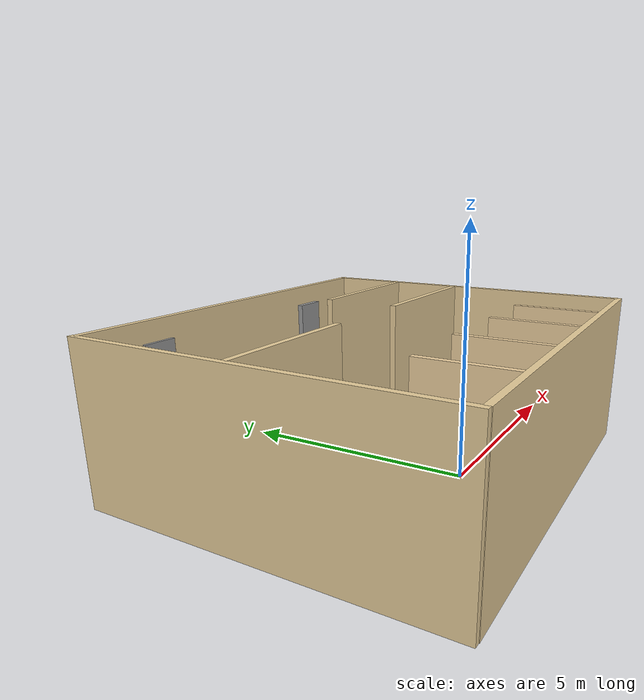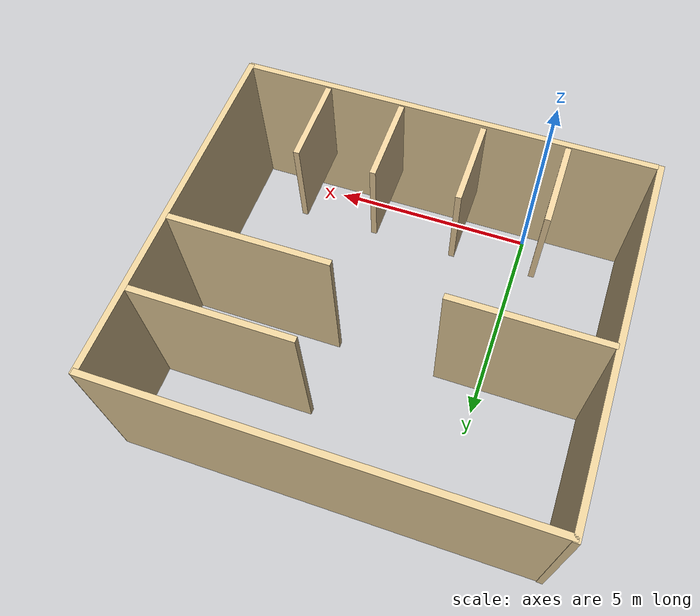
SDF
<?xml version='1.0'?>
<sdf version='1.7'>
  <model name='HospitalWalls'>
    <link name='HospitalWalls::hospital_test::hospital_test::hospital_test::hospital_test::hospital_test::Door_0'>
      <pose>-0.47628 7.70771 0 0 -0 0</pose>
      <self_collide>0</self_collide>
      <enable_wind>0</enable_wind>
      <kinematic>0</kinematic>
      <visual name='Door_0_Visual'>
        <pose>0 0 1 0 -0 0</pose>
        <geometry>
          <box>
            <size>0.9 0.17 2</size>
          </box>
        </geometry>
        <material>
          <script>
            <uri>file://media/materials/scripts/gazebo.material</uri>
            <name>Gazebo/Grey</name>
          </script>
          <shader type='pixel'/>
        </material>
        <transparency>0</transparency>
        <cast_shadows>1</cast_shadows>
      </visual>
      <collision name='Door_0_Collision'>
        <laser_retro>0</laser_retro>
        <max_contacts>10</max_contacts>
        <pose>0 0 1 0 -0 0</pose>
        <geometry>
          <box>
            <size>0.9 0.17 2</size>
          </box>
        </geometry>
        <surface>
          <friction>
            <ode>
              <mu>1</mu>
              <mu2>1</mu2>
              <fdir1>0 0 0</fdir1>
              <slip1>0</slip1>
              <slip2>0</slip2>
            </ode>
            <torsional>
              <coefficient>1</coefficient>
              <patch_radius>0</patch_radius>
              <surface_radius>0</surface_radius>
              <use_patch_radius>1</use_patch_radius>
              <ode>
                <slip>0</slip>
              </ode>
            </torsional>
          </friction>
          <bounce>
            <restitution_coefficient>0</restitution_coefficient>
            <threshold>1e+06</threshold>
          </bounce>
          <contact>
            <collide_without_contact>0</collide_without_contact>
            <collide_without_contact_bitmask>1</collide_without_contact_bitmask>
            <collide_bitmask>1</collide_bitmask>
            <ode>
              <soft_cfm>0</soft_cfm>
              <soft_erp>0.2</soft_erp>
              <kp>1e+13</kp>
              <kd>1</kd>
              <max_vel>0.01</max_vel>
              <min_depth>0</min_depth>
            </ode>
            <bullet>
              <split_impulse>1</split_impulse>
              <split_impulse_penetration_threshold>-0.01</split_impulse_penetration_threshold>
              <soft_cfm>0</soft_cfm>
              <soft_erp>0.2</soft_erp>
              <kp>1e+13</kp>
              <kd>1</kd>
            </bullet>
          </contact>
        </surface>
      </collision>
    </link>
    <link name='HospitalWalls::hospital_test::hospital_test::hospital_test::hospital_test::Wall_15_clone'>
      <pose>5.78046 -0.214578 0 0 -0 1.5708</pose>
      <self_collide>0</self_collide>
      <enable_wind>0</enable_wind>
      <kinematic>0</kinematic>
      <visual name='Wall_15_Visual'>
        <pose>0 0 1.25 0 -0 0</pose>
        <geometry>
          <box>
            <size>2.25 0.15 2.5</size>
          </box>
        </geometry>
        <material>
          <script>
            <uri>file://media/materials/scripts/gazebo.material</uri>
            <name>Gazebo/Grey</name>
          </script>
          <ambient>0.921569 0.807843 0.615686 1</ambient>
          <shader type='pixel'/>
        </material>
        <meta>
          <layer>0</layer>
        </meta>
        <transparency>0</transparency>
        <cast_shadows>1</cast_shadows>
      </visual>
      <collision name='Wall_15_Collision'>
        <laser_retro>0</laser_retro>
        <max_contacts>10</max_contacts>
        <pose>0 0 1.25 0 -0 0</pose>
        <geometry>
          <box>
            <size>2.25 0.15 2.5</size>
          </box>
        </geometry>
        <surface>
          <friction>
            <ode>
              <mu>1</mu>
              <mu2>1</mu2>
              <fdir1>0 0 0</fdir1>
              <slip1>0</slip1>
              <slip2>0</slip2>
            </ode>
            <torsional>
              <coefficient>1</coefficient>
              <patch_radius>0</patch_radius>
              <surface_radius>0</surface_radius>
              <use_patch_radius>1</use_patch_radius>
              <ode>
                <slip>0</slip>
              </ode>
            </torsional>
          </friction>
          <bounce>
            <restitution_coefficient>0</restitution_coefficient>
            <threshold>1e+06</threshold>
          </bounce>
          <contact>
            <collide_without_contact>0</collide_without_contact>
            <collide_without_contact_bitmask>1</collide_without_contact_bitmask>
            <collide_bitmask>1</collide_bitmask>
            <ode>
              <soft_cfm>0</soft_cfm>
              <soft_erp>0.2</soft_erp>
              <kp>1e+13</kp>
              <kd>1</kd>
              <max_vel>0.01</max_vel>
              <min_depth>0</min_depth>
            </ode>
            <bullet>
              <split_impulse>1</split_impulse>
              <split_impulse_penetration_threshold>-0.01</split_impulse_penetration_threshold>
              <soft_cfm>0</soft_cfm>
              <soft_erp>0.2</soft_erp>
              <kp>1e+13</kp>
              <kd>1</kd>
            </bullet>
          </contact>
        </surface>
      </collision>
    </link>
    <link name='HospitalWalls::hospital_test::hospital_test::hospital_test::hospital_test::hospital_test::Door_1'>
      <pose>5.60707 7.63831 0 0 -0 0</pose>
      <self_collide>0</self_collide>
      <enable_wind>0</enable_wind>
      <kinematic>0</kinematic>
      <visual name='Door_1_Visual'>
        <pose>0 0 1 0 -0 0</pose>
        <geometry>
          <box>
            <size>0.9 0.17 2</size>
          </box>
        </geometry>
        <material>
          <script>
            <uri>file://media/materials/scripts/gazebo.material</uri>
            <name>Gazebo/Grey</name>
          </script>
          <shader type='pixel'/>
        </material>
        <transparency>0</transparency>
        <cast_shadows>1</cast_shadows>
      </visual>
      <collision name='Door_1_Collision'>
        <laser_retro>0</laser_retro>
        <max_contacts>10</max_contacts>
        <pose>0 0 1 0 -0 0</pose>
        <geometry>
          <box>
            <size>0.9 0.17 2</size>
          </box>
        </geometry>
        <surface>
          <friction>
            <ode>
              <mu>1</mu>
              <mu2>1</mu2>
              <fdir1>0 0 0</fdir1>
              <slip1>0</slip1>
              <slip2>0</slip2>
            </ode>
            <torsional>
              <coefficient>1</coefficient>
              <patch_radius>0</patch_radius>
              <surface_radius>0</surface_radius>
              <use_patch_radius>1</use_patch_radius>
              <ode>
                <slip>0</slip>
              </ode>
            </torsional>
          </friction>
          <bounce>
            <restitution_coefficient>0</restitution_coefficient>
            <threshold>1e+06</threshold>
          </bounce>
          <contact>
            <collide_without_contact>0</collide_without_contact>
            <collide_without_contact_bitmask>1</collide_without_contact_bitmask>
            <collide_bitmask>1</collide_bitmask>
            <ode>
              <soft_cfm>0</soft_cfm>
              <soft_erp>0.2</soft_erp>
              <kp>1e+13</kp>
              <kd>1</kd>
              <max_vel>0.01</max_vel>
              <min_depth>0</min_depth>
            </ode>
            <bullet>
              <split_impulse>1</split_impulse>
              <split_impulse_penetration_threshold>-0.01</split_impulse_penetration_threshold>
              <soft_cfm>0</soft_cfm>
              <soft_erp>0.2</soft_erp>
              <kp>1e+13</kp>
              <kd>1</kd>
            </bullet>
          </contact>
        </surface>
      </collision>
    </link>
    <link name='HospitalWalls::hospital_test::hospital_test::hospital_test::hospital_test::hospital_test::Wall_10'>
      <pose>-0.455438 -0.216971 0 0 -0 1.5708</pose>
      <self_collide>0</self_collide>
      <enable_wind>0</enable_wind>
      <kinematic>0</kinematic>
      <visual name='Wall_10_Visual'>
        <pose>0 0 1.25 0 -0 0</pose>
        <geometry>
          <box>
            <size>2.25 0.15 2.5</size>
          </box>
        </geometry>
        <material>
          <script>
            <uri>file://media/materials/scripts/gazebo.material</uri>
            <name>Gazebo/Grey</name>
          </script>
          <ambient>0.921569 0.807843 0.615686 1</ambient>
          <shader type='pixel'/>
        </material>
        <meta>
          <layer>0</layer>
        </meta>
        <transparency>0</transparency>
        <cast_shadows>1</cast_shadows>
      </visual>
      <collision name='Wall_10_Collision'>
        <laser_retro>0</laser_retro>
        <max_contacts>10</max_contacts>
        <pose>0 0 1.25 0 -0 0</pose>
        <geometry>
          <box>
            <size>2.25 0.15 2.5</size>
          </box>
        </geometry>
        <surface>
          <friction>
            <ode>
              <mu>1</mu>
              <mu2>1</mu2>
              <fdir1>0 0 0</fdir1>
              <slip1>0</slip1>
              <slip2>0</slip2>
            </ode>
            <torsional>
              <coefficient>1</coefficient>
              <patch_radius>0</patch_radius>
              <surface_radius>0</surface_radius>
              <use_patch_radius>1</use_patch_radius>
              <ode>
                <slip>0</slip>
              </ode>
            </torsional>
          </friction>
          <bounce>
            <restitution_coefficient>0</restitution_coefficient>
            <threshold>1e+06</threshold>
          </bounce>
          <contact>
            <collide_without_contact>0</collide_without_contact>
            <collide_without_contact_bitmask>1</collide_without_contact_bitmask>
            <collide_bitmask>1</collide_bitmask>
            <ode>
              <soft_cfm>0</soft_cfm>
              <soft_erp>0.2</soft_erp>
              <kp>1e+13</kp>
              <kd>1</kd>
              <max_vel>0.01</max_vel>
              <min_depth>0</min_depth>
            </ode>
            <bullet>
              <split_impulse>1</split_impulse>
              <split_impulse_penetration_threshold>-0.01</split_impulse_penetration_threshold>
              <soft_cfm>0</soft_cfm>
              <soft_erp>0.2</soft_erp>
              <kp>1e+13</kp>
              <kd>1</kd>
            </bullet>
          </contact>
        </surface>
      </collision>
    </link>
    <link name='HospitalWalls::hospital_test::hospital_test::hospital_test::hospital_test::hospital_test::Wall_12'>
      <pose>1.67297 -0.170712 0 0 -0 1.5708</pose>
      <self_collide>0</self_collide>
      <enable_wind>0</enable_wind>
      <kinematic>0</kinematic>
      <visual name='Wall_12_Visual'>
        <pose>0 0 1.25 0 -0 0</pose>
        <geometry>
          <box>
            <size>2.25 0.15 2.5</size>
          </box>
        </geometry>
        <material>
          <script>
            <uri>file://media/materials/scripts/gazebo.material</uri>
            <name>Gazebo/Grey</name>
          </script>
          <ambient>0.921569 0.807843 0.615686 1</ambient>
          <shader type='pixel'/>
        </material>
        <meta>
          <layer>0</layer>
        </meta>
        <transparency>0</transparency>
        <cast_shadows>1</cast_shadows>
      </visual>
      <collision name='Wall_12_Collision'>
        <laser_retro>0</laser_retro>
        <max_contacts>10</max_contacts>
        <pose>0 0 1.25 0 -0 0</pose>
        <geometry>
          <box>
            <size>2.25 0.15 2.5</size>
          </box>
        </geometry>
        <surface>
          <friction>
            <ode>
              <mu>1</mu>
              <mu2>1</mu2>
              <fdir1>0 0 0</fdir1>
              <slip1>0</slip1>
              <slip2>0</slip2>
            </ode>
            <torsional>
              <coefficient>1</coefficient>
              <patch_radius>0</patch_radius>
              <surface_radius>0</surface_radius>
              <use_patch_radius>1</use_patch_radius>
              <ode>
                <slip>0</slip>
              </ode>
            </torsional>
          </friction>
          <bounce>
            <restitution_coefficient>0</restitution_coefficient>
            <threshold>1e+06</threshold>
          </bounce>
          <contact>
            <collide_without_contact>0</collide_without_contact>
            <collide_without_contact_bitmask>1</collide_without_contact_bitmask>
            <collide_bitmask>1</collide_bitmask>
            <ode>
              <soft_cfm>0</soft_cfm>
              <soft_erp>0.2</soft_erp>
              <kp>1e+13</kp>
              <kd>1</kd>
              <max_vel>0.01</max_vel>
              <min_depth>0</min_depth>
            </ode>
            <bullet>
              <split_impulse>1</split_impulse>
              <split_impulse_penetration_threshold>-0.01</split_impulse_penetration_threshold>
              <soft_cfm>0</soft_cfm>
              <soft_erp>0.2</soft_erp>
              <kp>1e+13</kp>
              <kd>1</kd>
            </bullet>
          </contact>
        </surface>
      </collision>
    </link>
    <link name='HospitalWalls::hospital_test::hospital_test::hospital_test::hospital_test::hospital_test::Wall_15'>
      <pose>3.82148 -0.216971 0 0 -0 1.5708</pose>
      <self_collide>0</self_collide>
      <enable_wind>0</enable_wind>
      <kinematic>0</kinematic>
      <gravity>1</gravity>
      <inertial>
        <mass>1</mass>
        <pose>0 0 0 0 -0 0</pose>
        <inertia>
          <ixx>1</ixx>
          <ixy>0</ixy>
          <ixz>0</ixz>
          <iyy>1</iyy>
          <iyz>0</iyz>
          <izz>1</izz>
        </inertia>
      </inertial>
      <visual name='Wall_15_Visual'>
        <pose>0 0 1.25 0 -0 0</pose>
        <geometry>
          <box>
            <size>2.25 0.15 2.5</size>
          </box>
        </geometry>
        <material>
          <script>
            <uri>file://media/materials/scripts/gazebo.material</uri>
            <name>Gazebo/Grey</name>
          </script>
          <ambient>0.922 0.808 0.616 1</ambient>
          <shader type='pixel'>
            <normal_map>__default__</normal_map>
          </shader>
        </material>
        <meta>
          <layer>0</layer>
        </meta>
        <transparency>0</transparency>
        <cast_shadows>1</cast_shadows>
      </visual>
      <collision name='Wall_15_Collision'>
        <laser_retro>0</laser_retro>
        <max_contacts>10</max_contacts>
        <pose>0 0 1.25 0 -0 0</pose>
        <geometry>
          <box>
            <size>2.25 0.15 2.5</size>
          </box>
        </geometry>
        <surface>
          <friction>
            <ode>
              <mu>1</mu>
              <mu2>1</mu2>
              <fdir1>0 0 0</fdir1>
              <slip1>0</slip1>
              <slip2>0</slip2>
            </ode>
            <torsional>
              <coefficient>1</coefficient>
              <patch_radius>0</patch_radius>
              <surface_radius>0</surface_radius>
              <use_patch_radius>1</use_patch_radius>
              <ode>
                <slip>0</slip>
              </ode>
            </torsional>
          </friction>
          <bounce>
            <restitution_coefficient>0</restitution_coefficient>
            <threshold>1e+06</threshold>
          </bounce>
          <contact>
            <collide_without_contact>0</collide_without_contact>
            <collide_without_contact_bitmask>1</collide_without_contact_bitmask>
            <collide_bitmask>1</collide_bitmask>
            <ode>
              <soft_cfm>0</soft_cfm>
              <soft_erp>0.2</soft_erp>
              <kp>1e+13</kp>
              <kd>1</kd>
              <max_vel>0.01</max_vel>
              <min_depth>0</min_depth>
            </ode>
            <bullet>
              <split_impulse>1</split_impulse>
              <split_impulse_penetration_threshold>-0.01</split_impulse_penetration_threshold>
              <soft_cfm>0</soft_cfm>
              <soft_erp>0.2</soft_erp>
              <kp>1e+13</kp>
              <kd>1</kd>
            </bullet>
          </contact>
        </surface>
      </collision>
    </link>
    <link name='HospitalWalls::link_0'>
      <inertial>
        <mass>6.75235</mass>
        <inertia>
          <ixx>9.38568</ixx>
          <ixy>0</ixy>
          <ixz>0</ixz>
          <iyy>72.7317</iyy>
          <iyz>0</iyz>
          <izz>63.3734</izz>
        </inertia>
        <pose>0 0 0 0 -0 0</pose>
      </inertial>
      <pose>2.68996 -1.41359 0.5 0 -0 0</pose>
      <self_collide>0</self_collide>
      <enable_wind>0</enable_wind>
      <kinematic>0</kinematic>
      <gravity>1</gravity>
      <visual name='visual'>
        <pose>0 0 0 0 -0 0</pose>
        <geometry>
          <box>
            <size>10.6113 0.156015 4.08112</size>
          </box>
        </geometry>
        <material>
          <lighting>1</lighting>
          <script>
            <uri>file://media/materials/scripts/gazebo.material</uri>
            <name>Gazebo/Grey</name>
          </script>
          <shader type='pixel'>
            <normal_map>__default__</normal_map>
          </shader>
          <ambient>0.9 0.8 0.6 1</ambient>
          <diffuse>0.7 0.7 0.7 1</diffuse>
          <specular>0.01 0.01 0.01 1</specular>
          <emissive>0 0 0 1</emissive>
        </material>
        <transparency>0</transparency>
        <cast_shadows>1</cast_shadows>
      </visual>
      <collision name='collision'>
        <laser_retro>0</laser_retro>
        <max_contacts>10</max_contacts>
        <pose>0 0 0 0 -0 0</pose>
        <geometry>
          <box>
            <size>10.6113 0.156015 4.08112</size>
          </box>
        </geometry>
        <surface>
          <friction>
            <ode>
              <mu>1</mu>
              <mu2>1</mu2>
              <fdir1>0 0 0</fdir1>
              <slip1>0</slip1>
              <slip2>0</slip2>
            </ode>
            <torsional>
              <coefficient>1</coefficient>
              <patch_radius>0</patch_radius>
              <surface_radius>0</surface_radius>
              <use_patch_radius>1</use_patch_radius>
              <ode>
                <slip>0</slip>
              </ode>
            </torsional>
          </friction>
          <bounce>
            <restitution_coefficient>0</restitution_coefficient>
            <threshold>1e+06</threshold>
          </bounce>
          <contact>
            <collide_without_contact>0</collide_without_contact>
            <collide_without_contact_bitmask>1</collide_without_contact_bitmask>
            <collide_bitmask>1</collide_bitmask>
            <ode>
              <soft_cfm>0</soft_cfm>
              <soft_erp>0.2</soft_erp>
              <kp>1e+13</kp>
              <kd>1</kd>
              <max_vel>0.01</max_vel>
              <min_depth>0</min_depth>
            </ode>
            <bullet>
              <split_impulse>1</split_impulse>
              <split_impulse_penetration_threshold>-0.01</split_impulse_penetration_threshold>
              <soft_cfm>0</soft_cfm>
              <soft_erp>0.2</soft_erp>
              <kp>1e+13</kp>
              <kd>1</kd>
            </bullet>
          </contact>
        </surface>
      </collision>
    </link>
    <link name='link_0_clone'>
      <inertial>
        <mass>6.75235</mass>
        <inertia>
          <ixx>9.38568</ixx>
          <ixy>0</ixy>
          <ixz>0</ixz>
          <iyy>72.7317</iyy>
          <iyz>0</iyz>
          <izz>63.3734</izz>
        </inertia>
        <pose>0 0 0 0 -0 0</pose>
      </inertial>
      <pose>-2.63808 3.20368 0.5 0 0 -1.57962</pose>
      <self_collide>0</self_collide>
      <enable_wind>0</enable_wind>
      <kinematic>0</kinematic>
      <gravity>1</gravity>
      <visual name='visual'>
        <pose>0 0 0 0 -0 0</pose>
        <geometry>
          <box>
            <size>9.36494 0.156015 4.08112</size>
          </box>
        </geometry>
        <material>
          <lighting>1</lighting>
          <script>
            <uri>file://media/materials/scripts/gazebo.material</uri>
            <name>Gazebo/Grey</name>
          </script>
          <shader type='pixel'>
            <normal_map>__default__</normal_map>
          </shader>
          <ambient>0.9 0.8 0.6 1</ambient>
          <diffuse>0.7 0.7 0.7 1</diffuse>
          <specular>0.01 0.01 0.01 1</specular>
          <emissive>0 0 0 1</emissive>
        </material>
        <transparency>0</transparency>
        <cast_shadows>1</cast_shadows>
      </visual>
      <collision name='collision'>
        <laser_retro>0</laser_retro>
        <max_contacts>10</max_contacts>
        <pose>0 0 0 0 -0 0</pose>
        <geometry>
          <box>
            <size>9.36494 0.156015 4.08112</size>
          </box>
        </geometry>
        <surface>
          <friction>
            <ode>
              <mu>1</mu>
              <mu2>1</mu2>
              <fdir1>0 0 0</fdir1>
              <slip1>0</slip1>
              <slip2>0</slip2>
            </ode>
            <torsional>
              <coefficient>1</coefficient>
              <patch_radius>0</patch_radius>
              <surface_radius>0</surface_radius>
              <use_patch_radius>1</use_patch_radius>
              <ode>
                <slip>0</slip>
              </ode>
            </torsional>
          </friction>
          <bounce>
            <restitution_coefficient>0</restitution_coefficient>
            <threshold>1e+06</threshold>
          </bounce>
          <contact>
            <collide_without_contact>0</collide_without_contact>
            <collide_without_contact_bitmask>1</collide_without_contact_bitmask>
            <collide_bitmask>1</collide_bitmask>
            <ode>
              <soft_cfm>0</soft_cfm>
              <soft_erp>0.2</soft_erp>
              <kp>1e+13</kp>
              <kd>1</kd>
              <max_vel>0.01</max_vel>
              <min_depth>0</min_depth>
            </ode>
            <bullet>
              <split_impulse>1</split_impulse>
              <split_impulse_penetration_threshold>-0.01</split_impulse_penetration_threshold>
              <soft_cfm>0</soft_cfm>
              <soft_erp>0.2</soft_erp>
              <kp>1e+13</kp>
              <kd>1</kd>
            </bullet>
          </contact>
        </surface>
      </collision>
    </link>
    <link name='link_0_clone_0'>
      <inertial>
        <mass>6.75235</mass>
        <inertia>
          <ixx>9.38568</ixx>
          <ixy>0</ixy>
          <ixz>0</ixz>
          <iyy>72.7317</iyy>
          <iyz>0</iyz>
          <izz>63.3734</izz>
        </inertia>
        <pose>0 0 0 0 -0 0</pose>
      </inertial>
      <pose>-0.682959 3.62609 0.5 0 -0 0</pose>
      <self_collide>0</self_collide>
      <enable_wind>0</enable_wind>
      <kinematic>0</kinematic>
      <gravity>1</gravity>
      <visual name='visual'>
        <pose>0 0 0 0 -0 0</pose>
        <geometry>
          <box>
            <size>3.83284 0.156015 4.08112</size>
          </box>
        </geometry>
        <material>
          <lighting>1</lighting>
          <script>
            <uri>file://media/materials/scripts/gazebo.material</uri>
            <name>Gazebo/Grey</name>
          </script>
          <shader type='pixel'>
            <normal_map>__default__</normal_map>
          </shader>
          <ambient>0.9 0.8 0.6 1</ambient>
          <diffuse>0.7 0.7 0.7 1</diffuse>
          <specular>0.01 0.01 0.01 1</specular>
          <emissive>0 0 0 1</emissive>
        </material>
        <transparency>0</transparency>
        <cast_shadows>1</cast_shadows>
      </visual>
      <collision name='collision'>
        <laser_retro>0</laser_retro>
        <max_contacts>10</max_contacts>
        <pose>0 0 0 0 -0 0</pose>
        <geometry>
          <box>
            <size>3.83284 0.156015 4.08112</size>
          </box>
        </geometry>
        <surface>
          <friction>
            <ode>
              <mu>1</mu>
              <mu2>1</mu2>
              <fdir1>0 0 0</fdir1>
              <slip1>0</slip1>
              <slip2>0</slip2>
            </ode>
            <torsional>
              <coefficient>1</coefficient>
              <patch_radius>0</patch_radius>
              <surface_radius>0</surface_radius>
              <use_patch_radius>1</use_patch_radius>
              <ode>
                <slip>0</slip>
              </ode>
            </torsional>
          </friction>
          <bounce>
            <restitution_coefficient>0</restitution_coefficient>
            <threshold>1e+06</threshold>
          </bounce>
          <contact>
            <collide_without_contact>0</collide_without_contact>
            <collide_without_contact_bitmask>1</collide_without_contact_bitmask>
            <collide_bitmask>1</collide_bitmask>
            <ode>
              <soft_cfm>0</soft_cfm>
              <soft_erp>0.2</soft_erp>
              <kp>1e+13</kp>
              <kd>1</kd>
              <max_vel>0.01</max_vel>
              <min_depth>0</min_depth>
            </ode>
            <bullet>
              <split_impulse>1</split_impulse>
              <split_impulse_penetration_threshold>-0.01</split_impulse_penetration_threshold>
              <soft_cfm>0</soft_cfm>
              <soft_erp>0.2</soft_erp>
              <kp>1e+13</kp>
              <kd>1</kd>
            </bullet>
          </contact>
        </surface>
      </collision>
    </link>
    <link name='link_0_clone_1'>
      <inertial>
        <mass>6.75235</mass>
        <inertia>
          <ixx>9.38568</ixx>
          <ixy>0</ixy>
          <ixz>0</ixz>
          <iyy>72.7317</iyy>
          <iyz>0</iyz>
          <izz>63.3734</izz>
        </inertia>
        <pose>0 0 0 0 -0 0</pose>
      </inertial>
      <pose>5.86558 3.61726 0.5 0 -0 0</pose>
      <self_collide>0</self_collide>
      <enable_wind>0</enable_wind>
      <kinematic>0</kinematic>
      <gravity>1</gravity>
      <visual name='visual'>
        <pose>0 0 0 0 -0 0</pose>
        <geometry>
          <box>
            <size>4.03614 0.156015 4.08112</size>
          </box>
        </geometry>
        <material>
          <lighting>1</lighting>
          <script>
            <uri>file://media/materials/scripts/gazebo.material</uri>
            <name>Gazebo/Grey</name>
          </script>
          <shader type='pixel'>
            <normal_map>__default__</normal_map>
          </shader>
          <ambient>0.9 0.8 0.6 1</ambient>
          <diffuse>0.7 0.7 0.7 1</diffuse>
          <specular>0.01 0.01 0.01 1</specular>
          <emissive>0 0 0 1</emissive>
        </material>
        <transparency>0</transparency>
        <cast_shadows>1</cast_shadows>
      </visual>
      <collision name='collision'>
        <laser_retro>0</laser_retro>
        <max_contacts>10</max_contacts>
        <pose>0 0 0 0 -0 0</pose>
        <geometry>
          <box>
            <size>4.03614 0.156015 4.08112</size>
          </box>
        </geometry>
        <surface>
          <friction>
            <ode>
              <mu>1</mu>
              <mu2>1</mu2>
              <fdir1>0 0 0</fdir1>
              <slip1>0</slip1>
              <slip2>0</slip2>
            </ode>
            <torsional>
              <coefficient>1</coefficient>
              <patch_radius>0</patch_radius>
              <surface_radius>0</surface_radius>
              <use_patch_radius>1</use_patch_radius>
              <ode>
                <slip>0</slip>
              </ode>
            </torsional>
          </friction>
          <bounce>
            <restitution_coefficient>0</restitution_coefficient>
            <threshold>1e+06</threshold>
          </bounce>
          <contact>
            <collide_without_contact>0</collide_without_contact>
            <collide_without_contact_bitmask>1</collide_without_contact_bitmask>
            <collide_bitmask>1</collide_bitmask>
            <ode>
              <soft_cfm>0</soft_cfm>
              <soft_erp>0.2</soft_erp>
              <kp>1e+13</kp>
              <kd>1</kd>
              <max_vel>0.01</max_vel>
              <min_depth>0</min_depth>
            </ode>
            <bullet>
              <split_impulse>1</split_impulse>
              <split_impulse_penetration_threshold>-0.01</split_impulse_penetration_threshold>
              <soft_cfm>0</soft_cfm>
              <soft_erp>0.2</soft_erp>
              <kp>1e+13</kp>
              <kd>1</kd>
            </bullet>
          </contact>
        </surface>
      </collision>
    </link>
    <link name='link_0_clone_2'>
      <inertial>
        <mass>6.75235</mass>
        <inertia>
          <ixx>9.38568</ixx>
          <ixy>0</ixy>
          <ixz>0</ixz>
          <iyy>72.7317</iyy>
          <iyz>0</iyz>
          <izz>63.3734</izz>
        </inertia>
        <pose>0 0 0 0 -0 0</pose>
      </inertial>
      <pose>5.86453 5.63823 0.5 0 -0 0</pose>
      <self_collide>0</self_collide>
      <enable_wind>0</enable_wind>
      <kinematic>0</kinematic>
      <gravity>1</gravity>
      <visual name='visual'>
        <pose>0 0 0 0 -0 0</pose>
        <geometry>
          <box>
            <size>3.99278 0.156015 4.08112</size>
          </box>
        </geometry>
        <material>
          <lighting>1</lighting>
          <script>
            <uri>file://media/materials/scripts/gazebo.material</uri>
            <name>Gazebo/Grey</name>
          </script>
          <shader type='pixel'>
            <normal_map>__default__</normal_map>
          </shader>
          <ambient>0.9 0.8 0.6 1</ambient>
          <diffuse>0.7 0.7 0.7 1</diffuse>
          <specular>0.01 0.01 0.01 1</specular>
          <emissive>0 0 0 1</emissive>
        </material>
        <transparency>0</transparency>
        <cast_shadows>1</cast_shadows>
      </visual>
      <collision name='collision'>
        <laser_retro>0</laser_retro>
        <max_contacts>10</max_contacts>
        <pose>0 0 0 0 -0 0</pose>
        <geometry>
          <box>
            <size>3.99278 0.156015 4.08112</size>
          </box>
        </geometry>
        <surface>
          <friction>
            <ode>
              <mu>1</mu>
              <mu2>1</mu2>
              <fdir1>0 0 0</fdir1>
              <slip1>0</slip1>
              <slip2>0</slip2>
            </ode>
            <torsional>
              <coefficient>1</coefficient>
              <patch_radius>0</patch_radius>
              <surface_radius>0</surface_radius>
              <use_patch_radius>1</use_patch_radius>
              <ode>
                <slip>0</slip>
              </ode>
            </torsional>
          </friction>
          <bounce>
            <restitution_coefficient>0</restitution_coefficient>
            <threshold>1e+06</threshold>
          </bounce>
          <contact>
            <collide_without_contact>0</collide_without_contact>
            <collide_without_contact_bitmask>1</collide_without_contact_bitmask>
            <collide_bitmask>1</collide_bitmask>
            <ode>
              <soft_cfm>0</soft_cfm>
              <soft_erp>0.2</soft_erp>
              <kp>1e+13</kp>
              <kd>1</kd>
              <max_vel>0.01</max_vel>
              <min_depth>0</min_depth>
            </ode>
            <bullet>
              <split_impulse>1</split_impulse>
              <split_impulse_penetration_threshold>-0.01</split_impulse_penetration_threshold>
              <soft_cfm>0</soft_cfm>
              <soft_erp>0.2</soft_erp>
              <kp>1e+13</kp>
              <kd>1</kd>
            </bullet>
          </contact>
        </surface>
      </collision>
    </link>
    <link name='link_0_clone_3'>
      <inertial>
        <mass>6.75235</mass>
        <inertia>
          <ixx>9.38568</ixx>
          <ixy>0</ixy>
          <ixz>0</ixz>
          <iyy>72.7317</iyy>
          <iyz>0</iyz>
          <izz>63.3734</izz>
        </inertia>
        <pose>0 0 0 0 -0 0</pose>
      </inertial>
      <pose>7.94591 3.19882 0.5 0 0 -1.56817</pose>
      <self_collide>0</self_collide>
      <enable_wind>0</enable_wind>
      <kinematic>0</kinematic>
      <gravity>1</gravity>
      <visual name='visual'>
        <pose>0 0 0 0 -0 0</pose>
        <geometry>
          <box>
            <size>9.31062 0.156015 4.08112</size>
          </box>
        </geometry>
        <material>
          <lighting>1</lighting>
          <script>
            <uri>file://media/materials/scripts/gazebo.material</uri>
            <name>Gazebo/Grey</name>
          </script>
          <shader type='pixel'>
            <normal_map>__default__</normal_map>
          </shader>
          <ambient>0.9 0.8 0.6 1</ambient>
          <diffuse>0.7 0.7 0.7 1</diffuse>
          <specular>0.01 0.01 0.01 1</specular>
          <emissive>0 0 0 1</emissive>
        </material>
        <transparency>0</transparency>
        <cast_shadows>1</cast_shadows>
      </visual>
      <collision name='collision'>
        <laser_retro>0</laser_retro>
        <max_contacts>10</max_contacts>
        <pose>0 0 0 0 -0 0</pose>
        <geometry>
          <box>
            <size>9.31062 0.156015 4.08112</size>
          </box>
        </geometry>
        <surface>
          <friction>
            <ode>
              <mu>1</mu>
              <mu2>1</mu2>
              <fdir1>0 0 0</fdir1>
              <slip1>0</slip1>
              <slip2>0</slip2>
            </ode>
            <torsional>
              <coefficient>1</coefficient>
              <patch_radius>0</patch_radius>
              <surface_radius>0</surface_radius>
              <use_patch_radius>1</use_patch_radius>
              <ode>
                <slip>0</slip>
              </ode>
            </torsional>
          </friction>
          <bounce>
            <restitution_coefficient>0</restitution_coefficient>
            <threshold>1e+06</threshold>
          </bounce>
          <contact>
            <collide_without_contact>0</collide_without_contact>
            <collide_without_contact_bitmask>1</collide_without_contact_bitmask>
            <collide_bitmask>1</collide_bitmask>
            <ode>
              <soft_cfm>0</soft_cfm>
              <soft_erp>0.2</soft_erp>
              <kp>1e+13</kp>
              <kd>1</kd>
              <max_vel>0.01</max_vel>
              <min_depth>0</min_depth>
            </ode>
            <bullet>
              <split_impulse>1</split_impulse>
              <split_impulse_penetration_threshold>-0.01</split_impulse_penetration_threshold>
              <soft_cfm>0</soft_cfm>
              <soft_erp>0.2</soft_erp>
              <kp>1e+13</kp>
              <kd>1</kd>
            </bullet>
          </contact>
        </surface>
      </collision>
    </link>
    <link name='link_0_clone_4'>
      <inertial>
        <mass>6.75235</mass>
        <inertia>
          <ixx>9.38568</ixx>
          <ixy>0</ixy>
          <ixz>0</ixz>
          <iyy>72.7317</iyy>
          <iyz>0</iyz>
          <izz>63.3734</izz>
        </inertia>
        <pose>0 0 0 0 -0 0</pose>
      </inertial>
      <pose>2.67506 7.78725 0.5 0 -0 0</pose>
      <self_collide>0</self_collide>
      <enable_wind>0</enable_wind>
      <kinematic>0</kinematic>
      <gravity>1</gravity>
      <visual name='visual'>
        <pose>0 0 0 0 -0 0</pose>
        <geometry>
          <box>
            <size>10.6113 0.156015 4.08112</size>
          </box>
        </geometry>
        <material>
          <lighting>1</lighting>
          <script>
            <uri>file://media/materials/scripts/gazebo.material</uri>
            <name>Gazebo/Grey</name>
          </script>
          <shader type='pixel'>
            <normal_map>__default__</normal_map>
          </shader>
          <ambient>0.9 0.8 0.6 1</ambient>
          <diffuse>0.7 0.7 0.7 1</diffuse>
          <specular>0.01 0.01 0.01 1</specular>
          <emissive>0 0 0 1</emissive>
        </material>
        <transparency>0</transparency>
        <cast_shadows>1</cast_shadows>
      </visual>
      <collision name='collision'>
        <laser_retro>0</laser_retro>
        <max_contacts>10</max_contacts>
        <pose>0 0 0 0 -0 0</pose>
        <geometry>
          <box>
            <size>10.6113 0.156015 4.08112</size>
          </box>
        </geometry>
        <surface>
          <friction>
            <ode>
              <mu>1</mu>
              <mu2>1</mu2>
              <fdir1>0 0 0</fdir1>
              <slip1>0</slip1>
              <slip2>0</slip2>
            </ode>
            <torsional>
              <coefficient>1</coefficient>
              <patch_radius>0</patch_radius>
              <surface_radius>0</surface_radius>
              <use_patch_radius>1</use_patch_radius>
              <ode>
                <slip>0</slip>
              </ode>
            </torsional>
          </friction>
          <bounce>
            <restitution_coefficient>0</restitution_coefficient>
            <threshold>1e+06</threshold>
          </bounce>
          <contact>
            <collide_without_contact>0</collide_without_contact>
            <collide_without_contact_bitmask>1</collide_without_contact_bitmask>
            <collide_bitmask>1</collide_bitmask>
            <ode>
              <soft_cfm>0</soft_cfm>
              <soft_erp>0.2</soft_erp>
              <kp>1e+13</kp>
              <kd>1</kd>
              <max_vel>0.01</max_vel>
              <min_depth>0</min_depth>
            </ode>
            <bullet>
              <split_impulse>1</split_impulse>
              <split_impulse_penetration_threshold>-0.01</split_impulse_penetration_threshold>
              <soft_cfm>0</soft_cfm>
              <soft_erp>0.2</soft_erp>
              <kp>1e+13</kp>
              <kd>1</kd>
            </bullet>
          </contact>
        </surface>
      </collision>
    </link>
    <static>1</static>
    <allow_auto_disable>1</allow_auto_disable>
  </model>
</sdf>
